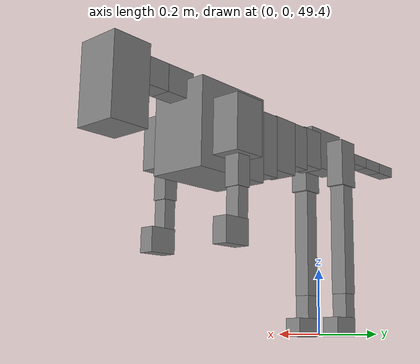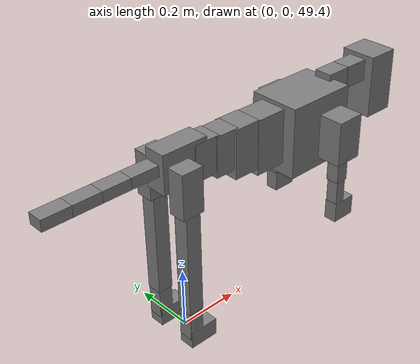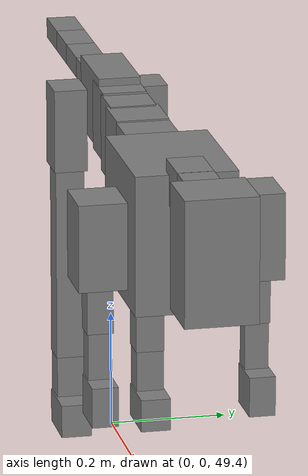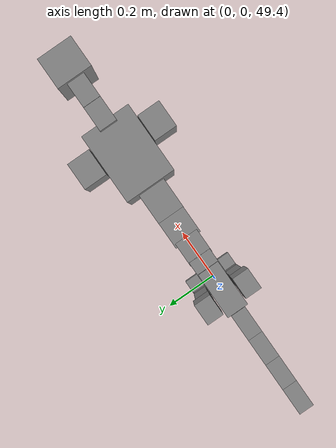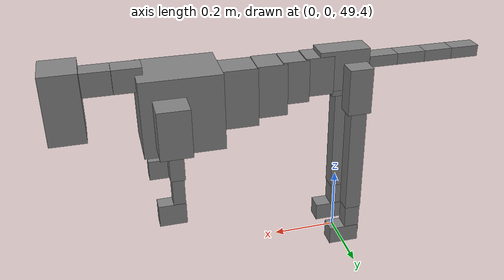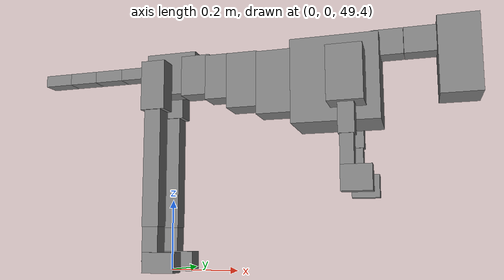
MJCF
<mujoco model="dog">

    <default>
        <joint armature="0.02" stiffness="1" damping="0.2" limited="true"/>
        <geom condim="3" friction="1 0.05 0.05" margin="0.01"/>
        <motor ctrllimited="true" ctrlrange="-1.0 1.0" forcelimited="true" gear="50"/>
    </default>

    <compiler inertiafromgeom="true" angle="radian"/>

    <option timestep="0.016" iterations="50" tolerance="1e-10" solver="Newton" jacobian="dense" cone="pyramidal"/>

    <size nconmax="20000" njmax="60000" nstack="5000000"/>
    <visual>
        <map force="0.1" zfar="30"/>
        <rgba haze="0.15 0.25 0.35 1"/>
        <quality shadowsize="2048"/>
        <global offwidth="800" offheight="800"/>
    </visual>

    <asset>
        <texture type="skybox" builtin="gradient" rgb1="0.3 0.5 0.7" rgb2="0 0 0" width="512" height="512"/>
        <texture name="texplane" type="2d" builtin="checker" rgb1=".2 .3 .4" rgb2=".1 0.15 0.2" width="512" height="512"
                 mark="cross" markrgb=".8 .8 .8"/>
        <texture name="texgeom" type="cube" builtin="flat" mark="cross" width="127" height="1278" rgb1="0.8 0.6 0.4"
                 rgb2="0.8 0.6 0.4" markrgb="1 1 1" random="0.01"/>

        <material name="matplane" reflectance="0.3" texture="texplane" texrepeat="1 1" texuniform="true"/>
        <material name="matgeom" texture="texgeom" texuniform="true" rgba="0.8 0.6 .4 1"/>
    </asset>

    <worldbody>
        <geom name="floor" pos="0 0 0" size="0 0 .25" type="plane" material="matplane" condim="3"/>

        <light directional="false" diffuse=".2 .2 .2" specular="0 0 0" pos="0 0 5" dir="0 0 -1" castshadow="false"/>
        <light mode="targetbodycom" target="torso" directional="false" diffuse=".8 .8 .8" specular="0.3 0.3 0.3"
               pos="0 0 4.0" dir="0 0 -1"/>

        <body name="root" pos="0 0 50">
            <freejoint name="root_1"/>
            <geom type="box" pos="0 0 -0.02" size="0.0774  0.0358  0.063" density="2030"/>

            <body name="spine1" pos="0.054 0 0">
                <joint name="spine1_y" axis="0 1 0" range="0 0.7" limited="true"/>
                <geom type="box" pos="0.02375 0 -0.03" size="0.04375  0.0375  0.05985" density="2030"/>

                <body name="spine2" pos="0.0612 0 0">
                    <joint name="spine2_y" axis="0 1 0" range="-0.15 0.15" limited="true"/>
                    <geom type="box" pos="0.03555  0  -0.04" size="0.04055  0.039  0.06615" density="2030"/>

                    <body name="spine3" pos="0.0730 0 0">
                        <joint name="spine3_y" axis="0 1 0" range="-0.15 0.15" limited="true"/>
                        <geom type="box" pos="0.03555  0  -0.057" size="0.04555  0.0445  0.081" density="2030"/>

                        <body name="spine4" pos="0.0780 0 0">
                            <joint name="spine4_y" axis="0 1 0" range="-0.15 0.15" limited="true"/>
                            <geom type="box" pos="0.05265  0  -0.07" size="0.05265  0.045  0.09135" density="2030"/>

                            <body name="torso" pos="0.1082 0 0">
                                <joint name="torso_y" axis="0 1 0" range="-0.15 0.15" limited="true"/>
                                <geom type="box" pos="0.11925  0  -0.085" size="0.11925  0.085  0.11745"
                                      density="2030"/>

                                <body name="neck1" pos="0.2160  0   0.0180">
                                    <joint name="neck1_y" axis="0 1 0" range="-1.2  -1" limited="true"/>
                                    <geom type="box" pos="0.0423  0  0" size="0.0423  0.03  0.036" density="2325"/>

                                    <body name="neck2" pos="0.0853  0  0">
                                        <joint name="neck2_y" axis="0 1 0" range="0.1  0" limited="true"/>
                                        <geom type="box" pos="0.0423  0  0" size="0.0423  0.03  0.036" density="2325"/>

                                        <body name="head" pos="0.0853  0  0">
                                            <joint name="head_y" axis="0 1 0" range="-0.3  -0.2" limited="true"/>
                                            <geom type="box" pos="0.0531  0  -0.055" size="0.0531  0.06  0.1044"
                                                  density="4030"/>

                                        </body>
                                    </body>
                                </body>

                                <body name="front_shoulder" pos="0.156  0   -0.0480">
                                    <joint name="front_shoulder_y" axis="0 1 0" range="-1 1.5" limited="true"/>
                                    <geom type="box" pos="0 0.13 -0.0465" size="0.0469  0.0401  0.0731" density="1158"/>
                                    <geom type="box" pos="0 -0.13 -0.0465" size="0.0469  0.0401  0.0731"
                                          density="1158"/>

                                    <body name="front_elbow" pos="0  0  -0.0930">
                                        <joint name="front_elbow_y" axis="0 1 0" range="-2 0" limited="true"/>
                                        <geom type="box" pos="0 0.13 -0.0535" size="0.0212  0.0217  0.0535"
                                              density="1081"/>
                                        <geom type="box" pos="0 -0.13 -0.0535" size="0.0212  0.0217  0.0535"
                                              density="1081"/>

                                        <body name="front_wrist" pos="0  0  -0.1069">
                                            <joint name="front_wrist_y" axis="0 1 0" range="-0.2 0" limited="true"/>
                                            <geom type="box" pos="0 0.13 -0.0468" size="0.0177  0.0197  0.0600"
                                                  density="1664"/>
                                            <geom type="box" pos="0 -0.13 -0.0468" size="0.0177  0.0197  0.0600"
                                                  density="1664"/>

                                            <body name="front_finger_end" pos="0  0  -0.0937">
                                                <joint name="front_finger_y" axis="0 1 0" range="-0.4 1"
                                                       limited="true"/>
                                                <geom type="box" pos="0.0217  0.13  -0.0184"
                                                      size="0.0399  0.0217  0.0334" density="1515"/>
                                                <geom type="box" pos="0.0217  -0.13  -0.0184"
                                                      size="0.0399  0.0217  0.0334" density="1515"/>

                                            </body>

                                        </body>
                                    </body>
                                </body>

                            </body>
                        </body>
                    </body>
                </body>
            </body>

            <body name="back_hip" pos="-0.03 0 -0.018">
                <joint name="back_hip_y" axis="0 1 0" range="-1.5 0.3" limited="true"/>
                <geom type="box" pos="0 0.07 -0.0493" size="0.0363  0.0284  0.0721" density="1154"/>
                <geom type="box" pos="0 -0.07 -0.0493" size="0.0363  0.0284  0.0721" density="1154"/>

                <body name="back_knee" pos="0  0  -0.0985">
                    <joint name="back_knee_y" axis="0 1 0" range="0 2.8" limited="true"/>
                    <geom type="box" pos="0 0.07 -0.1723" size="0.0251  0.0247  0.1879" density="1227"/>
                    <geom type="box" pos="0 -0.07 -0.1723" size="0.0251  0.0247  0.1879" density="1227"/>

                    <body name="back_ankle" pos="0  0  -0.3447">
                        <joint name="back_ankle_y" axis="0 1 0" range="-2.2 0" limited="true"/>
                        <geom type="box" pos="0 0.07 -0.0510" size="0.0237  0.0237  0.0623" density="1284"/>
                        <geom type="box" pos="0 -0.07 -0.0510" size="0.0237  0.0237  0.0623" density="1284"/>

                        <body name="back_toe_end" pos="0  0  -0.1020">
                            <joint name="back_toe_y" axis="0 1 0" range="-0.4 1" limited="true"/>
                            <geom type="box" pos="0.0260  0.07  -0.0137" size="0.0476  0.0260  0.0287" density="1515"/>
                            <geom type="box" pos="0.0260  -0.07  -0.0137" size="0.0476  0.0260  0.0287" density="1515"/>

                        </body>
                    </body>
                </body>
            </body>

            <body name="tail1" pos="-0.074 0 -0.006">
                <joint name="tail1_y" axis="0 1 0" range="-0.2 0.2" limited="true"/>
                <geom type="box" pos="-0.0536  0  0" size="0.045  0.025  0.0175" density="1587"/>

                <body name="tail2" pos="-0.09 0 0">
                    <joint name="tail2_y" axis="0 1 0" range="-0.2 0.2" limited="true"/>
                    <geom type="box" pos="-0.0536  0  0" size="0.045  0.025  0.0175" density="1587"/>

                    <body name="tail3" pos="-0.09 0 0">
                        <joint name="tail3_y" axis="0 1 0" range="-0.2 0.2" limited="true"/>
                        <geom type="box" pos="-0.0536  0  0" size="0.045  0.025  0.0175" density="1587"/>

                        <body name="tail4" pos="-0.09 0 0">
                            <joint name="tail4_y" axis="0 1 0" range="-0.2 0.2" limited="true"/>
                            <geom type="box" pos="-0.0536  0  0" size="0.045  0.025  0.0175" density="1587"/>

                        </body>
                    </body>
                </body>
            </body>
        </body>
    </worldbody>

    <actuator>
        <motor joint="spine1_y" forcerange="-150 150     "/>
        <motor joint="spine2_y" forcerange="-150 150     "/>
        <motor joint="spine3_y" forcerange="-150 150     "/>
        <motor joint="spine4_y" forcerange="-150 150     "/>
        <motor joint="torso_y" forcerange="-150 150     "/>
        <motor joint="neck1_y" forcerange="-100 100       "/>
        <motor joint="neck2_y" forcerange="-100 100       "/>
        <motor joint="head_y" forcerange="-150 150       "/>
        <motor joint="front_shoulder_y" forcerange="-174.80 192.44"/>
        <motor joint="front_elbow_y" forcerange="-104.30 153.28"/>
        <motor joint="front_wrist_y" forcerange="-91.05 66.68"/>
        <motor joint="front_finger_y" forcerange="-30.27 45.67"/>
        <motor joint="back_hip_y" forcerange="-257.33 321.84"/>
        <motor joint="back_knee_y" forcerange="-336.03 223.77"/>
        <motor joint="back_angle_y" forcerange="-78.99 199.68"/>
        <motor joint="back_toe_y" forcerange="-102.30 25.53"/>
        <motor joint="tail1_y" forcerange="-50 50     "/>
        <motor joint="tail2_y" forcerange="-50 50     "/>
        <motor joint="tail3_y" forcerange="-50 50     "/>
        <motor joint="tail4_y" forcerange="-50 50     "/>
    </actuator>
</mujoco>
